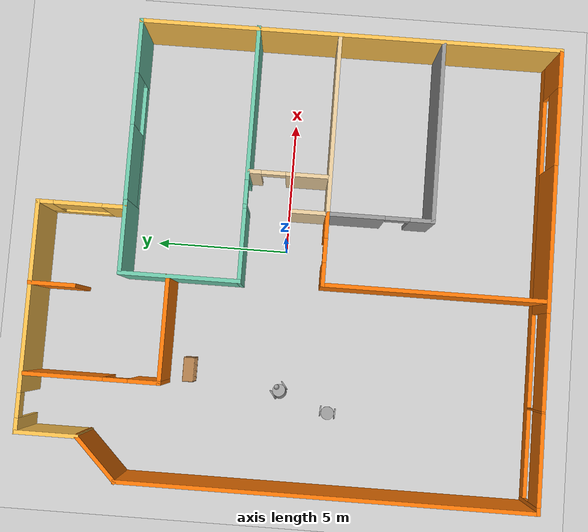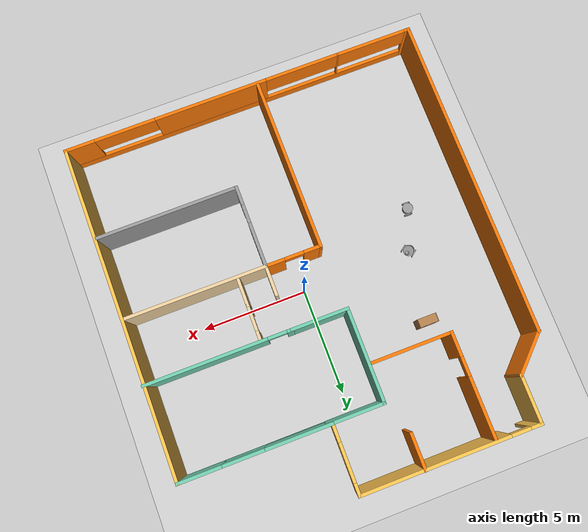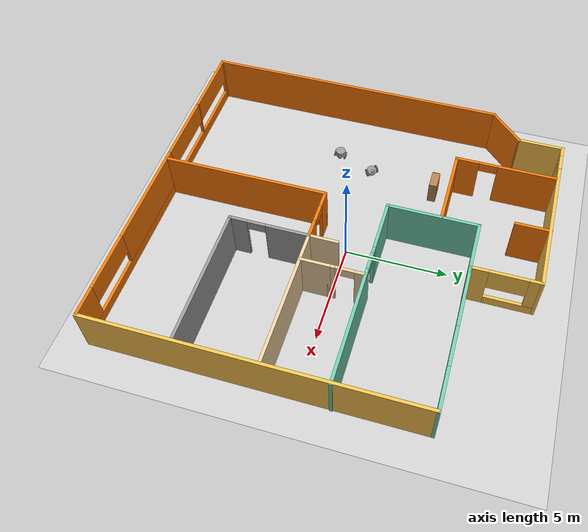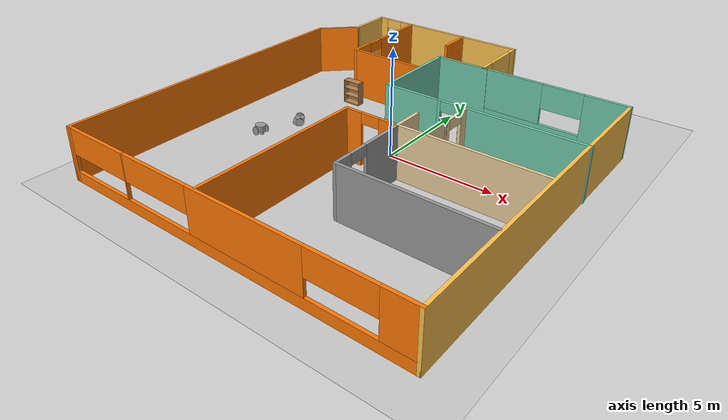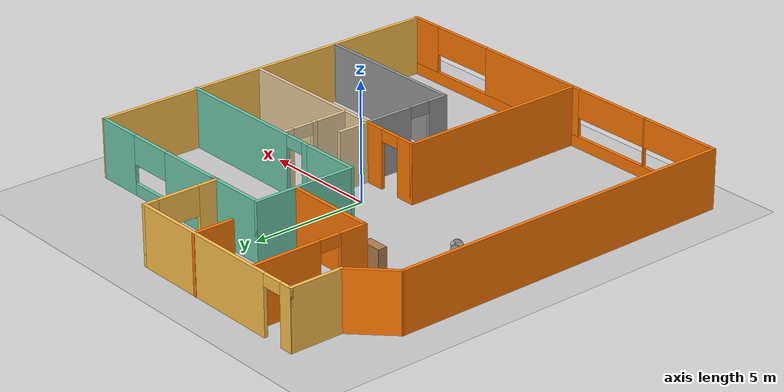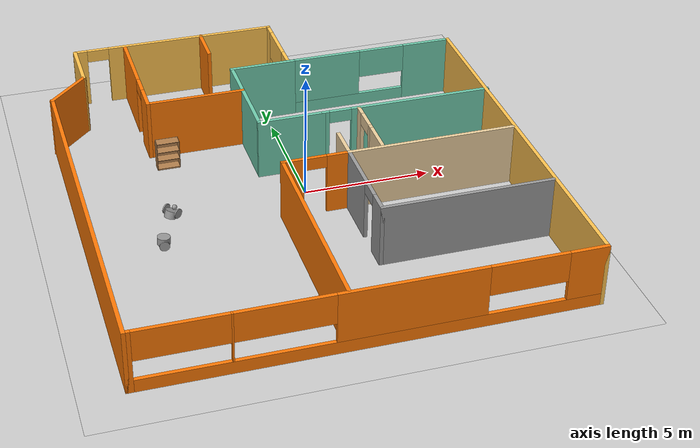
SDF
<sdf version="1.6">
 <world name="default">
  <plugin name="gzplugin" filename="libgzplugin.so"/>
  <light name="sun" type="directional">
   <pose>0 0 10 0 -0 0</pose>
   <diffuse>0.8 0.8 0.8 1</diffuse>
   <specular>0.2 0.2 0.2 1</specular>
   <attenuation>
    <range>1000</range>
    <constant>0.9</constant>
    <linear>0.01</linear>
    <quadratic>0.001</quadratic>
   </attenuation>
   <direction>-0.5 0.1 -0.9</direction>
  </light>
  <model name="ground_plane">
   <static>1</static>
   <link name="link">
    <collision name="collision">
     <geometry><plane><normal>0 0 1</normal><size>100 100</size></plane></geometry>
     <surface><friction><ode><mu>100</mu><mu2>50</mu2></ode></friction></surface>
    </collision>
    <visual name="visual">
     <cast_shadows>0</cast_shadows>
     <geometry><plane><normal>0 0 1</normal><size>100 100</size></plane></geometry>
     <material>
      <script><uri>file://media/materials/scripts/gazebo.material</uri><name>Gazebo/Grey</name></script>
     </material>
    </visual>
   </link>
  </model>
  <gravity>0 0 -9.8</gravity>
  <magnetic_field>6e-06 2.3e-05 -4.2e-05</magnetic_field>
  <atmosphere type="adiabatic"/>
  <physics name="default_physics" default="0" type="ode">
   <max_step_size>0.001</max_step_size>
   <real_time_factor>1</real_time_factor>
   <real_time_update_rate>1000</real_time_update_rate>
  </physics>
  <scene><ambient>0.4 0.4 0.4 1</ambient><background>0.7 0.7 0.7 1</background><shadows>1</shadows></scene>
  <spherical_coordinates>
   <surface_model>EARTH_WGS84</surface_model>
   <latitude_deg>0</latitude_deg>
   <longitude_deg>0</longitude_deg>
   <elevation>0</elevation>
   <heading_deg>0</heading_deg>
  </spherical_coordinates>
  <model name="model">
   <pose>-0.414758 -0.21473 0 0 -0 0</pose>
   <link name="Wall_250">
    <pose>1.40261 7.79151 0 0 -0 1.5708</pose>
    <visual name="Wall_250_Visual_0">
     <pose>-1.21186 0 1.25 0 -0 0</pose>
     <geometry><box><size>0.907436 0.15 2.5</size></box></geometry>
     <material>
      <script><uri>file://media/materials/scripts/gazebo.material</uri><name>Gazebo/Grey</name></script>
      <ambient>1 0.764706 0.305882 1</ambient>
     </material>
     <meta><layer>0</layer></meta>
    </visual>
    <collision name="Wall_250_Collision_0">
     <geometry><box><size>0.907436 0.15 2.5</size></box></geometry>
     <pose>-1.21186 0 1.25 0 -0 0</pose>
    </collision>
    <visual name="Wall_250_Visual_1">
     <pose>0.453718 0 0.25 0 -0 0</pose>
     <geometry><box><size>2.42372 0.15 0.5</size></box></geometry>
     <material>
      <script><uri>file://media/materials/scripts/gazebo.material</uri><name>Gazebo/Grey</name></script>
      <ambient>1 0.764706 0.305882 1</ambient>
     </material>
     <meta><layer>0</layer></meta>
    </visual>
    <collision name="Wall_250_Collision_1">
     <geometry><box><size>2.42372 0.15 0.5</size></box></geometry>
     <pose>0.453718 0 0.25 0 -0 0</pose>
    </collision>
    <visual name="Wall_250_Visual_2">
     <pose>1.34733 0 1.5 0 -0 0</pose>
     <geometry><box><size>0.636504 0.15 2</size></box></geometry>
     <material>
      <script><uri>file://media/materials/scripts/gazebo.material</uri><name>Gazebo/Grey</name></script>
      <ambient>1 0.764706 0.305882 1</ambient>
     </material>
     <meta><layer>0</layer></meta>
    </visual>
    <collision name="Wall_250_Collision_2">
     <geometry><box><size>0.636504 0.15 2</size></box></geometry>
     <pose>1.34733 0 1.5 0 -0 0</pose>
    </collision>
    <visual name="Wall_250_Visual_3">
     <pose>0.135466 0 1.9 0 -0 0</pose>
     <geometry><box><size>1.78722 0.15 1.2</size></box></geometry>
     <material>
      <script><uri>file://media/materials/scripts/gazebo.material</uri><name>Gazebo/Grey</name></script>
      <ambient>1 0.764706 0.305882 1</ambient>
     </material>
     <meta><layer>0</layer></meta>
    </visual>
    <collision name="Wall_250_Collision_3">
     <geometry><box><size>1.78722 0.15 1.2</size></box></geometry>
     <pose>0.135466 0 1.9 0 -0 0</pose>
    </collision>
   </link>
   <link name="Wall_251">
    <pose>-2.77239 9.38209 0 0 -0 3.14159</pose>
    <visual name="Wall_251_Visual_0">
     <pose>-0.736206 0 1.25 0 -0 0</pose>
     <geometry><box><size>7.02759 0.15 2.5</size></box></geometry>
     <material>
      <script><uri>file://media/materials/scripts/gazebo.material</uri><name>Gazebo/Grey</name></script>
      <ambient>1 0.764706 0.305882 1</ambient>
     </material>
     <meta><layer>0</layer></meta>
    </visual>
    <collision name="Wall_251_Collision_0">
     <geometry><box><size>7.02759 0.15 2.5</size></box></geometry>
     <pose>-0.736206 0 1.25 0 -0 0</pose>
    </collision>
    <visual name="Wall_251_Visual_1">
     <pose>3.96379 0 1.25 0 -0 0</pose>
     <geometry><box><size>0.572412 0.15 2.5</size></box></geometry>
     <material>
      <script><uri>file://media/materials/scripts/gazebo.material</uri><name>Gazebo/Grey</name></script>
      <ambient>1 0.764706 0.305882 1</ambient>
     </material>
     <meta><layer>0</layer></meta>
    </visual>
    <collision name="Wall_251_Collision_1">
     <geometry><box><size>0.572412 0.15 2.5</size></box></geometry>
     <pose>3.96379 0 1.25 0 -0 0</pose>
    </collision>
    <visual name="Wall_251_Visual_2">
     <pose>3.22759 0 2.25 0 -0 0</pose>
     <geometry><box><size>0.9 0.15 0.5</size></box></geometry>
     <material>
      <script><uri>file://media/materials/scripts/gazebo.material</uri><name>Gazebo/Grey</name></script>
      <ambient>1 0.764706 0.305882 1</ambient>
     </material>
     <meta><layer>0</layer></meta>
    </visual>
    <collision name="Wall_251_Collision_2">
     <geometry><box><size>0.9 0.15 0.5</size></box></geometry>
     <pose>3.22759 0 2.25 0 -0 0</pose>
    </collision>
   </link>
   <link name="Wall_252">
    <collision name="Wall_252_Collision">
     <geometry><box><size>2.31518 0.15 2.5</size></box></geometry>
     <pose>0 0 1.25 0 -0 0</pose>
    </collision>
    <visual name="Wall_252_Visual">
     <pose>0 0 1.25 0 -0 0</pose>
     <geometry><box><size>2.31518 0.15 2.5</size></box></geometry>
     <material>
      <script><uri>file://media/materials/scripts/gazebo.material</uri><name>Gazebo/Grey</name></script>
      <ambient>1 0.764706 0.305882 1</ambient>
     </material>
     <meta><layer>0</layer></meta>
    </visual>
    <pose>-6.94739 8.2731 0 0 0 -1.5708</pose>
   </link>
   <link name="Wall_253">
    <collision name="Wall_253_Collision">
     <geometry><box><size>2.25 0.15 2.5</size></box></geometry>
     <pose>0 0 1.25 0 -0 0</pose>
    </collision>
    <visual name="Wall_253_Visual">
     <pose>0 0 1.25 0 -0 0</pose>
     <geometry><box><size>2.25 0.15 2.5</size></box></geometry>
     <material>
      <script><uri>file://media/materials/scripts/gazebo.material</uri><name>Gazebo/Grey</name></script>
      <ambient>0.996078 0.47451 0.0196078 1</ambient>
     </material>
     <meta><layer>0</layer></meta>
    </visual>
    <pose>-7.68985 6.44804 0 0 0 -2.35619</pose>
   </link>
   <link name="Wall_254">
    <collision name="Wall_254_Collision">
     <geometry><box><size>15.25 0.15 2.5</size></box></geometry>
     <pose>0 0 1.25 0 -0 0</pose>
    </collision>
    <visual name="Wall_254_Visual">
     <pose>0 0 1.25 0 -0 0</pose>
     <geometry><box><size>15.25 0.15 2.5</size></box></geometry>
     <material>
      <script><uri>file://media/materials/scripts/gazebo.material</uri><name>Gazebo/Grey</name></script>
      <ambient>0.996078 0.47451 0.0196078 1</ambient>
     </material>
     <meta><layer>0</layer></meta>
    </visual>
    <pose>-8.43231 -1.84442 0 0 0 -1.5708</pose>
   </link>
   <link name="Wall_255">
    <pose>-0.007316 -9.39442 0 0 -0 0</pose>
    <visual name="Wall_255_Visual_0">
     <pose>-8.35211 0 1.25 0 -0 0</pose>
     <geometry><box><size>0.295782 0.15 2.5</size></box></geometry>
     <material>
      <script><uri>file://media/materials/scripts/gazebo.material</uri><name>Gazebo/Grey</name></script>
      <ambient>0.996078 0.47451 0.0196078 1</ambient>
     </material>
     <meta><layer>0</layer></meta>
    </visual>
    <collision name="Wall_255_Collision_0">
     <geometry><box><size>0.295782 0.15 2.5</size></box></geometry>
     <pose>-8.35211 0 1.25 0 -0 0</pose>
    </collision>
    <visual name="Wall_255_Visual_1">
     <pose>0.147891 0 0.25 0 -0 0</pose>
     <geometry><box><size>16.7042 0.15 0.5</size></box></geometry>
     <material>
      <script><uri>file://media/materials/scripts/gazebo.material</uri><name>Gazebo/Grey</name></script>
      <ambient>0.996078 0.47451 0.0196078 1</ambient>
     </material>
     <meta><layer>0</layer></meta>
    </visual>
    <collision name="Wall_255_Collision_1">
     <geometry><box><size>16.7042 0.15 0.5</size></box></geometry>
     <pose>0.147891 0 0.25 0 -0 0</pose>
    </collision>
    <visual name="Wall_255_Visual_2">
     <pose>-4.85454 0 1.5 0 -0 0</pose>
     <geometry><box><size>0.068434 0.15 2</size></box></geometry>
     <material>
      <script><uri>file://media/materials/scripts/gazebo.material</uri><name>Gazebo/Grey</name></script>
      <ambient>0.996078 0.47451 0.0196078 1</ambient>
     </material>
     <meta><layer>0</layer></meta>
    </visual>
    <collision name="Wall_255_Collision_2">
     <geometry><box><size>0.068434 0.15 2</size></box></geometry>
     <pose>-4.85454 0 1.5 0 -0 0</pose>
    </collision>
    <visual name="Wall_255_Visual_3">
     <pose>1.41416 0 1.5 0 -0 0</pose>
     <geometry><box><size>5.41879 0.15 2</size></box></geometry>
     <material>
      <script><uri>file://media/materials/scripts/gazebo.material</uri><name>Gazebo/Grey</name></script>
      <ambient>0.996078 0.47451 0.0196078 1</ambient>
     </material>
     <meta><layer>0</layer></meta>
    </visual>
    <collision name="Wall_255_Collision_3">
     <geometry><box><size>5.41879 0.15 2</size></box></geometry>
     <pose>1.41416 0 1.5 0 -0 0</pose>
    </collision>
    <visual name="Wall_255_Visual_4">
     <pose>7.76488 0 1.5 0 -0 0</pose>
     <geometry><box><size>1.47024 0.15 2</size></box></geometry>
     <material>
      <script><uri>file://media/materials/scripts/gazebo.material</uri><name>Gazebo/Grey</name></script>
      <ambient>0.996078 0.47451 0.0196078 1</ambient>
     </material>
     <meta><layer>0</layer></meta>
    </visual>
    <collision name="Wall_255_Collision_4">
     <geometry><box><size>1.47024 0.15 2</size></box></geometry>
     <pose>7.76488 0 1.5 0 -0 0</pose>
    </collision>
    <visual name="Wall_255_Visual_5">
     <pose>-6.54649 0 1.9 0 -0 0</pose>
     <geometry><box><size>3.31547 0.15 1.2</size></box></geometry>
     <material>
      <script><uri>file://media/materials/scripts/gazebo.material</uri><name>Gazebo/Grey</name></script>
      <ambient>0.996078 0.47451 0.0196078 1</ambient>
     </material>
     <meta><layer>0</layer></meta>
    </visual>
    <collision name="Wall_255_Collision_5">
     <geometry><box><size>3.31547 0.15 1.2</size></box></geometry>
     <pose>-6.54649 0 1.9 0 -0 0</pose>
    </collision>
    <visual name="Wall_255_Visual_6">
     <pose>-3.05778 0 1.9 0 -0 0</pose>
     <geometry><box><size>3.52509 0.15 1.2</size></box></geometry>
     <material>
      <script><uri>file://media/materials/scripts/gazebo.material</uri><name>Gazebo/Grey</name></script>
      <ambient>0.996078 0.47451 0.0196078 1</ambient>
     </material>
     <meta><layer>0</layer></meta>
    </visual>
    <collision name="Wall_255_Collision_6">
     <geometry><box><size>3.52509 0.15 1.2</size></box></geometry>
     <pose>-3.05778 0 1.9 0 -0 0</pose>
    </collision>
    <visual name="Wall_255_Visual_7">
     <pose>5.57666 0 1.9 0 -0 0</pose>
     <geometry><box><size>2.9062 0.15 1.2</size></box></geometry>
     <material>
      <script><uri>file://media/materials/scripts/gazebo.material</uri><name>Gazebo/Grey</name></script>
      <ambient>0.996078 0.47451 0.0196078 1</ambient>
     </material>
     <meta><layer>0</layer></meta>
    </visual>
    <collision name="Wall_255_Collision_7">
     <geometry><box><size>2.9062 0.15 1.2</size></box></geometry>
     <pose>5.57666 0 1.9 0 -0 0</pose>
    </collision>
   </link>
   <link name="Wall_256">
    <collision name="Wall_256_Collision">
     <geometry><box><size>15.75 0.15 2.5</size></box></geometry>
     <pose>0 0 1.25 0 -0 0</pose>
    </collision>
    <visual name="Wall_256_Visual">
     <pose>0 0 1.25 0 -0 0</pose>
     <geometry><box><size>15.75 0.15 2.5</size></box></geometry>
     <material>
      <script><uri>file://media/materials/scripts/gazebo.material</uri><name>Gazebo/Grey</name></script>
      <ambient>1 0.764706 0.305882 1</ambient>
     </material>
     <meta><layer>0</layer></meta>
    </visual>
    <pose>8.41768 -1.59442 0 0 -0 1.5708</pose>
   </link>
   <link name="Wall_257">
    <pose>4.91589 6.20685 0 0 -0 3.14123</pose>
    <visual name="Wall_257_Visual_0">
     <pose>-2.54201 0 1.25 0 -0 0</pose>
     <geometry><box><size>2.06957 0.15 2.5</size></box></geometry>
     <material>
      <script><uri>file://media/materials/scripts/gazebo.material</uri><name>Gazebo/Grey</name></script>
      <ambient>0.435294 0.796078 0.67451 1</ambient>
     </material>
     <meta><layer>0</layer></meta>
    </visual>
    <collision name="Wall_257_Collision_0">
     <geometry><box><size>2.06957 0.15 2.5</size></box></geometry>
     <pose>-2.54201 0 1.25 0 -0 0</pose>
    </collision>
    <visual name="Wall_257_Visual_1">
     <pose>1.03478 0 0.25 0 -0 0</pose>
     <geometry><box><size>5.08402 0.15 0.5</size></box></geometry>
     <material>
      <script><uri>file://media/materials/scripts/gazebo.material</uri><name>Gazebo/Grey</name></script>
      <ambient>0.435294 0.796078 0.67451 1</ambient>
     </material>
     <meta><layer>0</layer></meta>
    </visual>
    <collision name="Wall_257_Collision_1">
     <geometry><box><size>5.08402 0.15 0.5</size></box></geometry>
     <pose>1.03478 0 0.25 0 -0 0</pose>
    </collision>
    <visual name="Wall_257_Visual_2">
     <pose>2.00299 0 1.5 0 -0 0</pose>
     <geometry><box><size>3.14761 0.15 2</size></box></geometry>
     <material>
      <script><uri>file://media/materials/scripts/gazebo.material</uri><name>Gazebo/Grey</name></script>
      <ambient>0.435294 0.796078 0.67451 1</ambient>
     </material>
     <meta><layer>0</layer></meta>
    </visual>
    <collision name="Wall_257_Collision_2">
     <geometry><box><size>3.14761 0.15 2</size></box></geometry>
     <pose>2.00299 0 1.5 0 -0 0</pose>
    </collision>
    <visual name="Wall_257_Visual_3">
     <pose>-0.53902 0 1.9 0 -0 0</pose>
     <geometry><box><size>1.93641 0.15 1.2</size></box></geometry>
     <material>
      <script><uri>file://media/materials/scripts/gazebo.material</uri><name>Gazebo/Grey</name></script>
      <ambient>0.435294 0.796078 0.67451 1</ambient>
     </material>
     <meta><layer>0</layer></meta>
    </visual>
    <collision name="Wall_257_Collision_3">
     <geometry><box><size>1.93641 0.15 1.2</size></box></geometry>
     <pose>-0.53902 0 1.9 0 -0 0</pose>
    </collision>
   </link>
   <link name="Wall_259">
    <collision name="Wall_259_Collision">
     <geometry><box><size>1.75 0.15 2.5</size></box></geometry>
     <pose>0 0 1.25 0 -0 0</pose>
    </collision>
    <visual name="Wall_259_Visual">
     <pose>0 0 1.25 0 -0 0</pose>
     <geometry><box><size>1.75 0.15 2.5</size></box></geometry>
     <material>
      <script><uri>file://media/materials/scripts/gazebo.material</uri><name>Gazebo/Grey</name></script>
      <ambient>0.996078 0.47451 0.0196078 1</ambient>
     </material>
     <meta><layer>0</layer></meta>
    </visual>
    <pose>-1.58228 8.59442 0 0 0 -1.5708</pose>
   </link>
   <link name="Wall_261">
    <pose>-4.85388 6.84315 0 0 0 -1.5708</pose>
    <visual name="Wall_261_Visual_0">
     <pose>-1.05218 0 1.25 0 -0 0</pose>
     <geometry><box><size>2.89563 0.15 2.5</size></box></geometry>
     <material>
      <script><uri>file://media/materials/scripts/gazebo.material</uri><name>Gazebo/Grey</name></script>
      <ambient>0.996078 0.47451 0.0196078 1</ambient>
     </material>
     <meta><layer>0</layer></meta>
    </visual>
    <collision name="Wall_261_Collision_0">
     <geometry><box><size>2.89563 0.15 2.5</size></box></geometry>
     <pose>-1.05218 0 1.25 0 -0 0</pose>
    </collision>
    <visual name="Wall_261_Visual_1">
     <pose>1.89782 0 1.25 0 -0 0</pose>
     <geometry><box><size>1.20437 0.15 2.5</size></box></geometry>
     <material>
      <script><uri>file://media/materials/scripts/gazebo.material</uri><name>Gazebo/Grey</name></script>
      <ambient>0.996078 0.47451 0.0196078 1</ambient>
     </material>
     <meta><layer>0</layer></meta>
    </visual>
    <collision name="Wall_261_Collision_1">
     <geometry><box><size>1.20437 0.15 2.5</size></box></geometry>
     <pose>1.89782 0 1.25 0 -0 0</pose>
    </collision>
    <visual name="Wall_261_Visual_2">
     <pose>0.845632 0 2.25 0 -0 0</pose>
     <geometry><box><size>0.9 0.15 0.5</size></box></geometry>
     <material>
      <script><uri>file://media/materials/scripts/gazebo.material</uri><name>Gazebo/Grey</name></script>
      <ambient>0.996078 0.47451 0.0196078 1</ambient>
     </material>
     <meta><layer>0</layer></meta>
    </visual>
    <collision name="Wall_261_Collision_2">
     <geometry><box><size>0.9 0.15 0.5</size></box></geometry>
     <pose>0.845632 0 2.25 0 -0 0</pose>
    </collision>
   </link>
   <link name="Wall_266">
    <collision name="Wall_266_Collision">
     <geometry><box><size>8.25 0.15 2.5</size></box></geometry>
     <pose>0 0 1.25 0 -0 0</pose>
    </collision>
    <visual name="Wall_266_Visual">
     <pose>0 0 1.25 0 -0 0</pose>
     <geometry><box><size>8.25 0.15 2.5</size></box></geometry>
     <material>
      <script><uri>file://media/materials/scripts/gazebo.material</uri><name>Gazebo/Grey</name></script>
      <ambient>0.996078 0.47451 0.0196078 1</ambient>
     </material>
     <meta><layer>0</layer></meta>
    </visual>
    <pose>-0.884083 -5.23961 0 0 -0 1.5708</pose>
   </link>
   <link name="Wall_267">
    <pose>0.415917 -1.18961 0 0 -0 0</pose>
    <visual name="Wall_267_Visual_0">
     <pose>-0.934942 0 1.25 0 -0 0</pose>
     <geometry><box><size>0.880117 0.15 2.5</size></box></geometry>
     <material>
      <script><uri>file://media/materials/scripts/gazebo.material</uri><name>Gazebo/Grey</name></script>
      <ambient>0.996078 0.47451 0.0196078 1</ambient>
     </material>
     <meta><layer>0</layer></meta>
    </visual>
    <collision name="Wall_267_Collision_0">
     <geometry><box><size>0.880117 0.15 2.5</size></box></geometry>
     <pose>-0.934942 0 1.25 0 -0 0</pose>
    </collision>
    <visual name="Wall_267_Visual_1">
     <pose>0.890058 0 1.25 0 -0 0</pose>
     <geometry><box><size>0.969883 0.15 2.5</size></box></geometry>
     <material>
      <script><uri>file://media/materials/scripts/gazebo.material</uri><name>Gazebo/Grey</name></script>
      <ambient>0.996078 0.47451 0.0196078 1</ambient>
     </material>
     <meta><layer>0</layer></meta>
    </visual>
    <collision name="Wall_267_Collision_1">
     <geometry><box><size>0.969883 0.15 2.5</size></box></geometry>
     <pose>0.890058 0 1.25 0 -0 0</pose>
    </collision>
    <visual name="Wall_267_Visual_2">
     <pose>-0.044883 0 2.25 0 -0 0</pose>
     <geometry><box><size>0.9 0.15 0.5</size></box></geometry>
     <material>
      <script><uri>file://media/materials/scripts/gazebo.material</uri><name>Gazebo/Grey</name></script>
      <ambient>0.996078 0.47451 0.0196078 1</ambient>
     </material>
     <meta><layer>0</layer></meta>
    </visual>
    <collision name="Wall_267_Collision_2">
     <geometry><box><size>0.9 0.15 0.5</size></box></geometry>
     <pose>-0.044883 0 2.25 0 -0 0</pose>
    </collision>
   </link>
   <link name="Wall_268">
    <collision name="Wall_268_Collision">
     <geometry><box><size>1.5 0.15 2.5</size></box></geometry>
     <pose>0 0 1.25 0 -0 0</pose>
    </collision>
    <visual name="Wall_268_Visual">
     <pose>0 0 1.25 0 -0 0</pose>
     <geometry><box><size>1.5 0.15 2.5</size></box></geometry>
     <material>
      <script><uri>file://media/materials/scripts/gazebo.material</uri><name>Gazebo/Grey</name></script>
      <ambient>0.921569 0.807843 0.615686 1</ambient>
     </material>
     <meta><layer>0</layer></meta>
    </visual>
    <pose>1.71592 -0.514608 0 0 -0 1.5708</pose>
   </link>
   <link name="Wall_272">
    <pose>1.71592 -3.11461 0 0 0 -1.5708</pose>
    <visual name="Wall_272_Visual_0">
     <pose>-0.913683 0 1.25 0 -0 0</pose>
     <geometry><box><size>2.17263 0.15 2.5</size></box></geometry>
     <material>
      <script><uri>file://media/materials/scripts/gazebo.material</uri><name>Gazebo/Grey</name></script>
      <ambient>1 1 1 1</ambient>
     </material>
     <meta><layer>0</layer></meta>
    </visual>
    <collision name="Wall_272_Collision_0">
     <geometry><box><size>2.17263 0.15 2.5</size></box></geometry>
     <pose>-0.913683 0 1.25 0 -0 0</pose>
    </collision>
    <visual name="Wall_272_Visual_1">
     <pose>1.53632 0 1.25 0 -0 0</pose>
     <geometry><box><size>0.927367 0.15 2.5</size></box></geometry>
     <material>
      <script><uri>file://media/materials/scripts/gazebo.material</uri><name>Gazebo/Grey</name></script>
      <ambient>1 1 1 1</ambient>
     </material>
     <meta><layer>0</layer></meta>
    </visual>
    <collision name="Wall_272_Collision_1">
     <geometry><box><size>0.927367 0.15 2.5</size></box></geometry>
     <pose>1.53632 0 1.25 0 -0 0</pose>
    </collision>
    <visual name="Wall_272_Visual_2">
     <pose>0.622633 0 2.25 0 -0 0</pose>
     <geometry><box><size>0.9 0.15 0.5</size></box></geometry>
     <material>
      <script><uri>file://media/materials/scripts/gazebo.material</uri><name>Gazebo/Grey</name></script>
      <ambient>1 1 1 1</ambient>
     </material>
     <meta><layer>0</layer></meta>
    </visual>
    <collision name="Wall_272_Collision_2">
     <geometry><box><size>0.9 0.15 0.5</size></box></geometry>
     <pose>0.622633 0 2.25 0 -0 0</pose>
    </collision>
   </link>
   <link name="Wall_273">
    <collision name="Wall_273_Collision">
     <geometry><box><size>6.75 0.15 2.5</size></box></geometry>
     <pose>0 0 1.25 0 -0 0</pose>
    </collision>
    <visual name="Wall_273_Visual">
     <pose>0 0 1.25 0 -0 0</pose>
     <geometry><box><size>6.75 0.15 2.5</size></box></geometry>
     <material>
      <script><uri>file://media/materials/scripts/gazebo.material</uri><name>Gazebo/Grey</name></script>
      <ambient>1 1 1 1</ambient>
     </material>
     <meta><layer>0</layer></meta>
    </visual>
    <pose>5.01592 -5.03961 0 0 -0 0</pose>
   </link>
   <link name="Wall_275">
    <collision name="Wall_275_Collision">
     <geometry><box><size>6.75 0.15 2.5</size></box></geometry>
     <pose>0 0 1.25 0 -0 0</pose>
    </collision>
    <visual name="Wall_275_Visual">
     <pose>0 0 1.25 0 -0 0</pose>
     <geometry><box><size>6.75 0.15 2.5</size></box></geometry>
     <material>
      <script><uri>file://media/materials/scripts/gazebo.material</uri><name>Gazebo/Grey</name></script>
      <ambient>0.921569 0.807843 0.615686 1</ambient>
     </material>
     <meta><layer>0</layer></meta>
    </visual>
    <pose>5.01592 -1.18961 0 0 -0 0</pose>
   </link>
   <link name="Wall_280">
    <collision name="Wall_280_Collision">
     <geometry><box><size>1.5 0.15 2.5</size></box></geometry>
     <pose>0 0 1.25 0 -0 0</pose>
    </collision>
    <visual name="Wall_280_Visual">
     <pose>0 0 1.25 0 -0 0</pose>
     <geometry><box><size>1.5 0.15 2.5</size></box></geometry>
     <material>
      <script><uri>file://media/materials/scripts/gazebo.material</uri><name>Gazebo/Grey</name></script>
      <ambient>0.921569 0.807843 0.615686 1</ambient>
     </material>
     <meta><layer>0</layer></meta>
    </visual>
    <pose>3.06592 -0.514608 0 0 0 -1.5708</pose>
   </link>
   <link name="Wall_282">
    <pose>3.06592 0.960392 0 0 -0 1.5708</pose>
    <visual name="Wall_282_Visual_0">
     <pose>-0.692344 0 1.25 0 -0 0</pose>
     <geometry><box><size>0.365312 0.15 2.5</size></box></geometry>
     <material>
      <script><uri>file://media/materials/scripts/gazebo.material</uri><name>Gazebo/Grey</name></script>
      <ambient>0.921569 0.807843 0.615686 1</ambient>
     </material>
     <meta><layer>0</layer></meta>
    </visual>
    <collision name="Wall_282_Collision_0">
     <geometry><box><size>0.365312 0.15 2.5</size></box></geometry>
     <pose>-0.692344 0 1.25 0 -0 0</pose>
    </collision>
    <visual name="Wall_282_Visual_1">
     <pose>0.632656 0 1.25 0 -0 0</pose>
     <geometry><box><size>0.484688 0.15 2.5</size></box></geometry>
     <material>
      <script><uri>file://media/materials/scripts/gazebo.material</uri><name>Gazebo/Grey</name></script>
      <ambient>0.921569 0.807843 0.615686 1</ambient>
     </material>
     <meta><layer>0</layer></meta>
    </visual>
    <collision name="Wall_282_Collision_1">
     <geometry><box><size>0.484688 0.15 2.5</size></box></geometry>
     <pose>0.632656 0 1.25 0 -0 0</pose>
    </collision>
    <visual name="Wall_282_Visual_2">
     <pose>-0.059688 0 2.25 0 -0 0</pose>
     <geometry><box><size>0.9 0.15 0.5</size></box></geometry>
     <material>
      <script><uri>file://media/materials/scripts/gazebo.material</uri><name>Gazebo/Grey</name></script>
      <ambient>0.921569 0.807843 0.615686 1</ambient>
     </material>
     <meta><layer>0</layer></meta>
    </visual>
    <collision name="Wall_282_Collision_2">
     <geometry><box><size>0.9 0.15 0.5</size></box></geometry>
     <pose>-0.059688 0 2.25 0 -0 0</pose>
    </collision>
   </link>
   <link name="Wall_285">
    <collision name="Wall_285_Collision">
     <geometry><box><size>2.75 0.15 2.5</size></box></geometry>
     <pose>0 0 1.25 0 -0 0</pose>
    </collision>
    <visual name="Wall_285_Visual">
     <pose>0 0 1.25 0 -0 0</pose>
     <geometry><box><size>2.75 0.15 2.5</size></box></geometry>
     <material>
      <script><uri>file://media/materials/scripts/gazebo.material</uri><name>Gazebo/Grey</name></script>
      <ambient>0.435294 0.796078 0.67451 1</ambient>
     </material>
     <meta><layer>0</layer></meta>
    </visual>
    <pose>0.313383 1.84373 0 0 -0 3.14159</pose>
   </link>
   <link name="Wall_286">
    <collision name="Wall_286_Collision">
     <geometry><box><size>4.5 0.15 2.5</size></box></geometry>
     <pose>0 0 1.25 0 -0 0</pose>
    </collision>
    <visual name="Wall_286_Visual">
     <pose>0 0 1.25 0 -0 0</pose>
     <geometry><box><size>4.5 0.15 2.5</size></box></geometry>
     <material>
      <script><uri>file://media/materials/scripts/gazebo.material</uri><name>Gazebo/Grey</name></script>
      <ambient>0.435294 0.796078 0.67451 1</ambient>
     </material>
     <meta><layer>0</layer></meta>
    </visual>
    <pose>-0.986617 4.01874 0 0 -0 1.5708</pose>
   </link>
   <link name="Wall_287">
    <collision name="Wall_287_Collision">
     <geometry><box><size>2.75 0.15 2.5</size></box></geometry>
     <pose>0 0 1.25 0 -0 0</pose>
    </collision>
    <visual name="Wall_287_Visual">
     <pose>0 0 1.25 0 -0 0</pose>
     <geometry><box><size>2.75 0.15 2.5</size></box></geometry>
     <material>
      <script><uri>file://media/materials/scripts/gazebo.material</uri><name>Gazebo/Grey</name></script>
      <ambient>0.435294 0.796078 0.67451 1</ambient>
     </material>
     <meta><layer>0</layer></meta>
    </visual>
    <pose>0.313383 6.19374 0 0 -0 0</pose>
   </link>
   <link name="Wall_289">
    <collision name="Wall_289_Collision">
     <geometry><box><size>4 0.15 2.5</size></box></geometry>
     <pose>0 0 1.25 0 -0 0</pose>
    </collision>
    <visual name="Wall_289_Visual">
     <pose>0 0 1.25 0 -0 0</pose>
     <geometry><box><size>4 0.15 2.5</size></box></geometry>
     <material>
      <script><uri>file://media/materials/scripts/gazebo.material</uri><name>Gazebo/Grey</name></script>
      <ambient>0.996078 0.47451 0.0196078 1</ambient>
     </material>
     <meta><layer>0</layer></meta>
    </visual>
    <pose>-2.92888 4.41815 0 0 -0 0</pose>
   </link>
   <link name="Wall_291">
    <pose>5.03838 1.84373 0 0 -0 0</pose>
    <visual name="Wall_291_Visual_0">
     <pose>-3.34441 0 1.25 0 -0 0</pose>
     <geometry><box><size>0.311174 0.15 2.5</size></box></geometry>
     <material>
      <script><uri>file://media/materials/scripts/gazebo.material</uri><name>Gazebo/Grey</name></script>
      <ambient>0.435294 0.796078 0.67451 1</ambient>
     </material>
     <meta><layer>0</layer></meta>
    </visual>
    <collision name="Wall_291_Collision_0">
     <geometry><box><size>0.311174 0.15 2.5</size></box></geometry>
     <pose>-3.34441 0 1.25 0 -0 0</pose>
    </collision>
    <visual name="Wall_291_Visual_1">
     <pose>0.605587 0 1.25 0 -0 0</pose>
     <geometry><box><size>5.78883 0.15 2.5</size></box></geometry>
     <material>
      <script><uri>file://media/materials/scripts/gazebo.material</uri><name>Gazebo/Grey</name></script>
      <ambient>0.435294 0.796078 0.67451 1</ambient>
     </material>
     <meta><layer>0</layer></meta>
    </visual>
    <collision name="Wall_291_Collision_1">
     <geometry><box><size>5.78883 0.15 2.5</size></box></geometry>
     <pose>0.605587 0 1.25 0 -0 0</pose>
    </collision>
    <visual name="Wall_291_Visual_2">
     <pose>-2.73883 0 2.25 0 -0 0</pose>
     <geometry><box><size>0.9 0.15 0.5</size></box></geometry>
     <material>
      <script><uri>file://media/materials/scripts/gazebo.material</uri><name>Gazebo/Grey</name></script>
      <ambient>0.435294 0.796078 0.67451 1</ambient>
     </material>
     <meta><layer>0</layer></meta>
    </visual>
    <collision name="Wall_291_Collision_2">
     <geometry><box><size>0.9 0.15 0.5</size></box></geometry>
     <pose>-2.73883 0 2.25 0 -0 0</pose>
    </collision>
   </link>
   <static>1</static>
  </model>
  <model name="bookshelf">
   <static>1</static>
   <link name="link">
    <inertial><mass>1</mass></inertial>
    <collision name="back">
     <pose>0 0.005 0.6 0 -0 0</pose>
     <geometry><box><size>0.9 0.01 1.2</size></box></geometry>
    </collision>
    <visual name="visual1">
     <pose>0 0.005 0.6 0 -0 0</pose>
     <geometry><box><size>0.9 0.01 1.2</size></box></geometry>
     <material>
      <script><uri>file://media/materials/scripts/gazebo.material</uri><name>Gazebo/Wood</name></script>
     </material>
    </visual>
    <collision name="left_side">
     <pose>0.45 -0.195 0.6 0 -0 0</pose>
     <geometry><box><size>0.02 0.4 1.2</size></box></geometry>
    </collision>
    <visual name="visual2">
     <pose>0.45 -0.195 0.6 0 -0 0</pose>
     <geometry><box><size>0.02 0.4 1.2</size></box></geometry>
     <material>
      <script><uri>file://media/materials/scripts/gazebo.material</uri><name>Gazebo/Wood</name></script>
     </material>
    </visual>
    <collision name="right_side">
     <pose>-0.45 -0.195 0.6 0 -0 0</pose>
     <geometry><box><size>0.02 0.4 1.2</size></box></geometry>
    </collision>
    <visual name="visual3">
     <pose>-0.45 -0.195 0.6 0 -0 0</pose>
     <geometry><box><size>0.02 0.4 1.2</size></box></geometry>
     <material>
      <script><uri>file://media/materials/scripts/gazebo.material</uri><name>Gazebo/Wood</name></script>
     </material>
    </visual>
    <collision name="bottom">
     <pose>0 -0.195 0.03 0 -0 0</pose>
     <geometry><box><size>0.88 0.4 0.06</size></box></geometry>
    </collision>
    <visual name="visual4">
     <pose>0 -0.195 0.03 0 -0 0</pose>
     <geometry><box><size>0.88 0.4 0.06</size></box></geometry>
     <material>
      <script><uri>file://media/materials/scripts/gazebo.material</uri><name>Gazebo/Wood</name></script>
     </material>
    </visual>
    <collision name="top">
     <pose>0 -0.195 1.19 0 -0 0</pose>
     <geometry><box><size>0.88 0.4 0.02</size></box></geometry>
    </collision>
    <visual name="visual5">
     <pose>0 -0.195 1.19 0 -0 0</pose>
     <geometry><box><size>0.88 0.4 0.02</size></box></geometry>
     <material>
      <script><uri>file://media/materials/scripts/gazebo.material</uri><name>Gazebo/Wood</name></script>
     </material>
    </visual>
    <collision name="low_shelf">
     <pose>0 -0.195 0.43 0 -0 0</pose>
     <geometry><box><size>0.88 0.4 0.02</size></box></geometry>
    </collision>
    <visual name="visual6">
     <pose>0 -0.195 0.43 0 -0 0</pose>
     <geometry><box><size>0.88 0.4 0.02</size></box></geometry>
     <material>
      <script><uri>file://media/materials/scripts/gazebo.material</uri><name>Gazebo/Wood</name></script>
     </material>
    </visual>
    <collision name="high_shelf">
     <pose>0 -0.195 0.8 0 -0 0</pose>
     <geometry><box><size>0.88 0.4 0.02</size></box></geometry>
    </collision>
    <visual name="visual7">
     <pose>0 -0.195 0.8 0 -0 0</pose>
     <geometry><box><size>0.88 0.4 0.02</size></box></geometry>
     <material>
      <script><uri>file://media/materials/scripts/gazebo.material</uri><name>Gazebo/Wood</name></script>
     </material>
    </visual>
   </link>
   <pose>-4.74509 3.51624 0 0 -0 0</pose>
  </model>
  <model name="pancakebot">
   <link name="link_0">
    <pose>-0.0425 -0.275019 0.012515 1.5707 -0 0</pose>
    <inertial>
     <mass>1</mass>
     <inertia><ixx>0.145833</ixx><ixy>0</ixy><ixz>0</ixz><iyy>0.145833</iyy><iyz>0</iyz><izz>0.125</izz></inertia>
    </inertial>
    <visual name="visual">
     <geometry><cylinder><radius>0.2</radius><length>0.05</length></cylinder></geometry>
     <material>
      <lighting>1</lighting>
      <script><uri>file://media/materials/scripts/gazebo.material</uri><name>Gazebo/Grey</name></script>
      <ambient>0.3 0.3 0.3 1</ambient>
      <diffuse>0.7 0.7 0.7 1</diffuse>
      <specular>0.01 0.01 0.01 1</specular>
      <emissive>0 0 0 1</emissive>
      <shader type="vertex"><normal_map>__default__</normal_map></shader>
     </material>
    </visual>
    <collision name="collision">
     <geometry><cylinder><radius>0.2</radius><length>0.05</length></cylinder></geometry>
     <surface>
      <friction>
       <ode><mu>1</mu><mu2>1</mu2><fdir1>0 0 0</fdir1><slip1>0</slip1><slip2>0</slip2></ode>
       <torsional>
        <coefficient>1</coefficient>
        <patch_radius>0</patch_radius>
        <surface_radius>0</surface_radius>
        <use_patch_radius>1</use_patch_radius>
        <ode><slip>0</slip></ode>
       </torsional>
      </friction>
      <bounce><restitution_coefficient>0</restitution_coefficient><threshold>1e+06</threshold></bounce>
      <contact>
       <collide_without_contact>0</collide_without_contact>
       <collide_without_contact_bitmask>1</collide_without_contact_bitmask>
       <collide_bitmask>1</collide_bitmask>
       <ode>
        <soft_cfm>0</soft_cfm>
        <soft_erp>0.2</soft_erp>
        <kp>1e+13</kp>
        <kd>1</kd>
        <max_vel>0.01</max_vel>
        <min_depth>0</min_depth>
       </ode>
       <bullet>
        <split_impulse>1</split_impulse>
        <split_impulse_penetration_threshold>-0.01</split_impulse_penetration_threshold>
        <soft_cfm>0</soft_cfm>
        <soft_erp>0.2</soft_erp>
        <kp>1e+13</kp>
        <kd>1</kd>
       </bullet>
      </contact>
     </surface>
    </collision>
   </link>
   <link name="link_0_clone">
    <pose>0.0075 0.275019 0.012483 1.5707 -0 0</pose>
    <inertial>
     <mass>1</mass>
     <inertia><ixx>0.145833</ixx><ixy>0</ixy><ixz>0</ixz><iyy>0.145833</iyy><iyz>0</iyz><izz>0.125</izz></inertia>
    </inertial>
    <visual name="visual">
     <geometry><cylinder><radius>0.2</radius><length>0.05</length></cylinder></geometry>
     <material>
      <lighting>1</lighting>
      <script><uri>file://media/materials/scripts/gazebo.material</uri><name>Gazebo/Grey</name></script>
      <ambient>0.3 0.3 0.3 1</ambient>
      <diffuse>0.7 0.7 0.7 1</diffuse>
      <specular>0.01 0.01 0.01 1</specular>
      <emissive>0 0 0 1</emissive>
      <shader type="vertex"><normal_map>__default__</normal_map></shader>
     </material>
    </visual>
    <collision name="collision">
     <geometry><cylinder><radius>0.2</radius><length>0.05</length></cylinder></geometry>
     <surface>
      <friction>
       <ode><mu>1</mu><mu2>1</mu2><fdir1>0 0 0</fdir1><slip1>0</slip1><slip2>0</slip2></ode>
       <torsional>
        <coefficient>1</coefficient>
        <patch_radius>0</patch_radius>
        <surface_radius>0</surface_radius>
        <use_patch_radius>1</use_patch_radius>
        <ode><slip>0</slip></ode>
       </torsional>
      </friction>
      <bounce><restitution_coefficient>0</restitution_coefficient><threshold>1e+06</threshold></bounce>
      <contact>
       <collide_without_contact>0</collide_without_contact>
       <collide_without_contact_bitmask>1</collide_without_contact_bitmask>
       <collide_bitmask>1</collide_bitmask>
       <ode>
        <soft_cfm>0</soft_cfm>
        <soft_erp>0.2</soft_erp>
        <kp>1e+13</kp>
        <kd>1</kd>
        <max_vel>0.01</max_vel>
        <min_depth>0</min_depth>
       </ode>
       <bullet>
        <split_impulse>1</split_impulse>
        <split_impulse_penetration_threshold>-0.01</split_impulse_penetration_threshold>
        <soft_cfm>0</soft_cfm>
        <soft_erp>0.2</soft_erp>
        <kp>1e+13</kp>
        <kd>1</kd>
       </bullet>
      </contact>
     </surface>
    </collision>
   </link>
   <link name="link_2">
    <pose>-0.0425 0 0.112501 0 -0 0</pose>
    <inertial>
     <mass>1</mass>
     <inertia><ixx>0.145833</ixx><ixy>0</ixy><ixz>0</ixz><iyy>0.145833</iyy><iyz>0</iyz><izz>0.125</izz></inertia>
    </inertial>
    <visual name="visual">
     <geometry><cylinder><radius>0.25</radius><length>0.3</length></cylinder></geometry>
     <material>
      <lighting>1</lighting>
      <script><uri>file://media/materials/scripts/gazebo.material</uri><name>Gazebo/Grey</name></script>
      <ambient>0.3 0.3 0.3 1</ambient>
      <diffuse>0.7 0.7 0.7 1</diffuse>
      <specular>0.01 0.01 0.01 1</specular>
      <emissive>0 0 0 1</emissive>
      <shader type="vertex"><normal_map>__default__</normal_map></shader>
     </material>
    </visual>
    <collision name="collision">
     <geometry><cylinder><radius>0.25</radius><length>0.3</length></cylinder></geometry>
     <surface>
      <friction>
       <ode><mu>1</mu><mu2>1</mu2><fdir1>0 0 0</fdir1><slip1>0</slip1><slip2>0</slip2></ode>
       <torsional>
        <coefficient>1</coefficient>
        <patch_radius>0</patch_radius>
        <surface_radius>0</surface_radius>
        <use_patch_radius>1</use_patch_radius>
        <ode><slip>0</slip></ode>
       </torsional>
      </friction>
      <bounce><restitution_coefficient>0</restitution_coefficient><threshold>1e+06</threshold></bounce>
      <contact>
       <collide_without_contact>0</collide_without_contact>
       <collide_without_contact_bitmask>1</collide_without_contact_bitmask>
       <collide_bitmask>1</collide_bitmask>
       <ode>
        <soft_cfm>0</soft_cfm>
        <soft_erp>0.2</soft_erp>
        <kp>1e+13</kp>
        <kd>1</kd>
        <max_vel>0.01</max_vel>
        <min_depth>0</min_depth>
       </ode>
       <bullet>
        <split_impulse>1</split_impulse>
        <split_impulse_penetration_threshold>-0.01</split_impulse_penetration_threshold>
        <soft_cfm>0</soft_cfm>
        <soft_erp>0.2</soft_erp>
        <kp>1e+13</kp>
        <kd>1</kd>
       </bullet>
      </contact>
     </surface>
    </collision>
   </link>
   <link name="link_3">
    <pose>0.0775 0 -0.137499 0 -0 0</pose>
    <inertial>
     <mass>1</mass>
     <inertia><ixx>0.1</ixx><ixy>0</ixy><ixz>0</ixz><iyy>0.1</iyy><iyz>0</iyz><izz>0.1</izz></inertia>
    </inertial>
    <visual name="visual">
     <geometry><sphere><radius>0.1</radius></sphere></geometry>
     <material>
      <lighting>1</lighting>
      <script><uri>file://media/materials/scripts/gazebo.material</uri><name>Gazebo/Grey</name></script>
      <ambient>0.3 0.3 0.3 1</ambient>
      <diffuse>0.7 0.7 0.7 1</diffuse>
      <specular>0.01 0.01 0.01 1</specular>
      <emissive>0 0 0 1</emissive>
      <shader type="vertex"><normal_map>__default__</normal_map></shader>
     </material>
    </visual>
    <collision name="collision">
     <geometry><sphere><radius>0.1</radius></sphere></geometry>
     <surface>
      <friction>
       <ode><mu>1</mu><mu2>1</mu2><fdir1>0 0 0</fdir1><slip1>0</slip1><slip2>0</slip2></ode>
       <torsional>
        <coefficient>1</coefficient>
        <patch_radius>0</patch_radius>
        <surface_radius>0</surface_radius>
        <use_patch_radius>1</use_patch_radius>
        <ode><slip>0</slip></ode>
       </torsional>
      </friction>
      <bounce><restitution_coefficient>0</restitution_coefficient><threshold>1e+06</threshold></bounce>
      <contact>
       <collide_without_contact>0</collide_without_contact>
       <collide_without_contact_bitmask>1</collide_without_contact_bitmask>
       <collide_bitmask>1</collide_bitmask>
       <ode>
        <soft_cfm>0</soft_cfm>
        <soft_erp>0.2</soft_erp>
        <kp>1e+13</kp>
        <kd>1</kd>
        <max_vel>0.01</max_vel>
        <min_depth>0</min_depth>
       </ode>
       <bullet>
        <split_impulse>1</split_impulse>
        <split_impulse_penetration_threshold>-0.01</split_impulse_penetration_threshold>
        <soft_cfm>0</soft_cfm>
        <soft_erp>0.2</soft_erp>
        <kp>1e+13</kp>
        <kd>1</kd>
       </bullet>
      </contact>
     </surface>
    </collision>
   </link>
   <joint name="link_2_JOINT_0" type="revolute">
    <parent>link_2</parent>
    <child>link_0</child>
    <axis>
     <xyz>0 0 1</xyz>
     <use_parent_model_frame>0</use_parent_model_frame>
     <limit>
      <lower>-1.79769e+308</lower>
      <upper>1.79769e+308</upper>
      <effort>-1</effort>
      <velocity>-1</velocity>
     </limit>
     <dynamics>
      <spring_reference>0</spring_reference>
      <spring_stiffness>0</spring_stiffness>
      <damping>0</damping>
      <friction>0</friction>
     </dynamics>
    </axis>
    <physics>
     <ode><limit><cfm>0</cfm><erp>0.2</erp></limit><suspension><cfm>0</cfm><erp>0.2</erp></suspension></ode>
    </physics>
   </joint>
   <joint name="link_2_JOINT_1" type="revolute">
    <parent>link_2</parent>
    <child>link_0_clone</child>
    <axis>
     <xyz>0 0 1</xyz>
     <use_parent_model_frame>0</use_parent_model_frame>
     <limit>
      <lower>-1.79769e+308</lower>
      <upper>1.79769e+308</upper>
      <effort>-1</effort>
      <velocity>-1</velocity>
     </limit>
     <dynamics>
      <spring_reference>0</spring_reference>
      <spring_stiffness>0</spring_stiffness>
      <damping>0</damping>
      <friction>0</friction>
     </dynamics>
    </axis>
    <physics>
     <ode><limit><cfm>0</cfm><erp>0.2</erp></limit><suspension><cfm>0</cfm><erp>0.2</erp></suspension></ode>
    </physics>
   </joint>
   <joint name="link_2_JOINT_2" type="ball">
    <parent>link_2</parent>
    <child>link_3</child>
    <physics>
     <ode><limit><cfm>0</cfm><erp>0.2</erp></limit><suspension><cfm>0</cfm><erp>0.2</erp></suspension></ode>
    </physics>
   </joint>
   <static>0</static>
   <pose>-5.29592 -0.066576 0.187494 -3.10338 0.364186 0.667737</pose>
  </model>
  <model name="pancakebot_0">
   <link name="link_0">
    <pose>-0.0425 -0.275019 0.012515 1.5707 -0 0</pose>
    <inertial>
     <mass>1</mass>
     <inertia><ixx>0.145833</ixx><ixy>0</ixy><ixz>0</ixz><iyy>0.145833</iyy><iyz>0</iyz><izz>0.125</izz></inertia>
    </inertial>
    <visual name="visual">
     <geometry><cylinder><radius>0.2</radius><length>0.05</length></cylinder></geometry>
     <material>
      <lighting>1</lighting>
      <script><uri>file://media/materials/scripts/gazebo.material</uri><name>Gazebo/Grey</name></script>
      <ambient>0.3 0.3 0.3 1</ambient>
      <diffuse>0.7 0.7 0.7 1</diffuse>
      <specular>0.01 0.01 0.01 1</specular>
      <emissive>0 0 0 1</emissive>
      <shader type="vertex"><normal_map>__default__</normal_map></shader>
     </material>
    </visual>
    <collision name="collision">
     <geometry><cylinder><radius>0.2</radius><length>0.05</length></cylinder></geometry>
     <surface>
      <friction>
       <ode><mu>1</mu><mu2>1</mu2><fdir1>0 0 0</fdir1><slip1>0</slip1><slip2>0</slip2></ode>
       <torsional>
        <coefficient>1</coefficient>
        <patch_radius>0</patch_radius>
        <surface_radius>0</surface_radius>
        <use_patch_radius>1</use_patch_radius>
        <ode><slip>0</slip></ode>
       </torsional>
      </friction>
      <bounce><restitution_coefficient>0</restitution_coefficient><threshold>1e+06</threshold></bounce>
      <contact>
       <collide_without_contact>0</collide_without_contact>
       <collide_without_contact_bitmask>1</collide_without_contact_bitmask>
       <collide_bitmask>1</collide_bitmask>
       <ode>
        <soft_cfm>0</soft_cfm>
        <soft_erp>0.2</soft_erp>
        <kp>1e+13</kp>
        <kd>1</kd>
        <max_vel>0.01</max_vel>
        <min_depth>0</min_depth>
       </ode>
       <bullet>
        <split_impulse>1</split_impulse>
        <split_impulse_penetration_threshold>-0.01</split_impulse_penetration_threshold>
        <soft_cfm>0</soft_cfm>
        <soft_erp>0.2</soft_erp>
        <kp>1e+13</kp>
        <kd>1</kd>
       </bullet>
      </contact>
     </surface>
    </collision>
   </link>
   <link name="link_0_clone">
    <pose>0.0075 0.275019 0.012483 1.5707 -0 0</pose>
    <inertial>
     <mass>1</mass>
     <inertia><ixx>0.145833</ixx><ixy>0</ixy><ixz>0</ixz><iyy>0.145833</iyy><iyz>0</iyz><izz>0.125</izz></inertia>
    </inertial>
    <visual name="visual">
     <geometry><cylinder><radius>0.2</radius><length>0.05</length></cylinder></geometry>
     <material>
      <lighting>1</lighting>
      <script><uri>file://media/materials/scripts/gazebo.material</uri><name>Gazebo/Grey</name></script>
      <ambient>0.3 0.3 0.3 1</ambient>
      <diffuse>0.7 0.7 0.7 1</diffuse>
      <specular>0.01 0.01 0.01 1</specular>
      <emissive>0 0 0 1</emissive>
      <shader type="vertex"><normal_map>__default__</normal_map></shader>
     </material>
    </visual>
    <collision name="collision">
     <geometry><cylinder><radius>0.2</radius><length>0.05</length></cylinder></geometry>
     <surface>
      <friction>
       <ode><mu>1</mu><mu2>1</mu2><fdir1>0 0 0</fdir1><slip1>0</slip1><slip2>0</slip2></ode>
       <torsional>
        <coefficient>1</coefficient>
        <patch_radius>0</patch_radius>
        <surface_radius>0</surface_radius>
        <use_patch_radius>1</use_patch_radius>
        <ode><slip>0</slip></ode>
       </torsional>
      </friction>
      <bounce><restitution_coefficient>0</restitution_coefficient><threshold>1e+06</threshold></bounce>
      <contact>
       <collide_without_contact>0</collide_without_contact>
       <collide_without_contact_bitmask>1</collide_without_contact_bitmask>
       <collide_bitmask>1</collide_bitmask>
       <ode>
        <soft_cfm>0</soft_cfm>
        <soft_erp>0.2</soft_erp>
        <kp>1e+13</kp>
        <kd>1</kd>
        <max_vel>0.01</max_vel>
        <min_depth>0</min_depth>
       </ode>
       <bullet>
        <split_impulse>1</split_impulse>
        <split_impulse_penetration_threshold>-0.01</split_impulse_penetration_threshold>
        <soft_cfm>0</soft_cfm>
        <soft_erp>0.2</soft_erp>
        <kp>1e+13</kp>
        <kd>1</kd>
       </bullet>
      </contact>
     </surface>
    </collision>
   </link>
   <link name="link_2">
    <pose>-0.0425 0 0.112501 0 -0 0</pose>
    <inertial>
     <mass>1</mass>
     <inertia><ixx>0.145833</ixx><ixy>0</ixy><ixz>0</ixz><iyy>0.145833</iyy><iyz>0</iyz><izz>0.125</izz></inertia>
    </inertial>
    <visual name="visual">
     <geometry><cylinder><radius>0.25</radius><length>0.3</length></cylinder></geometry>
     <material>
      <lighting>1</lighting>
      <script><uri>file://media/materials/scripts/gazebo.material</uri><name>Gazebo/Grey</name></script>
      <ambient>0.3 0.3 0.3 1</ambient>
      <diffuse>0.7 0.7 0.7 1</diffuse>
      <specular>0.01 0.01 0.01 1</specular>
      <emissive>0 0 0 1</emissive>
      <shader type="vertex"><normal_map>__default__</normal_map></shader>
     </material>
    </visual>
    <collision name="collision">
     <geometry><cylinder><radius>0.25</radius><length>0.3</length></cylinder></geometry>
     <surface>
      <friction>
       <ode><mu>1</mu><mu2>1</mu2><fdir1>0 0 0</fdir1><slip1>0</slip1><slip2>0</slip2></ode>
       <torsional>
        <coefficient>1</coefficient>
        <patch_radius>0</patch_radius>
        <surface_radius>0</surface_radius>
        <use_patch_radius>1</use_patch_radius>
        <ode><slip>0</slip></ode>
       </torsional>
      </friction>
      <bounce><restitution_coefficient>0</restitution_coefficient><threshold>1e+06</threshold></bounce>
      <contact>
       <collide_without_contact>0</collide_without_contact>
       <collide_without_contact_bitmask>1</collide_without_contact_bitmask>
       <collide_bitmask>1</collide_bitmask>
       <ode>
        <soft_cfm>0</soft_cfm>
        <soft_erp>0.2</soft_erp>
        <kp>1e+13</kp>
        <kd>1</kd>
        <max_vel>0.01</max_vel>
        <min_depth>0</min_depth>
       </ode>
       <bullet>
        <split_impulse>1</split_impulse>
        <split_impulse_penetration_threshold>-0.01</split_impulse_penetration_threshold>
        <soft_cfm>0</soft_cfm>
        <soft_erp>0.2</soft_erp>
        <kp>1e+13</kp>
        <kd>1</kd>
       </bullet>
      </contact>
     </surface>
    </collision>
   </link>
   <link name="link_3">
    <pose>0.0775 0 -0.137499 0 -0 0</pose>
    <inertial>
     <mass>1</mass>
     <inertia><ixx>0.1</ixx><ixy>0</ixy><ixz>0</ixz><iyy>0.1</iyy><iyz>0</iyz><izz>0.1</izz></inertia>
    </inertial>
    <visual name="visual">
     <geometry><sphere><radius>0.1</radius></sphere></geometry>
     <material>
      <lighting>1</lighting>
      <script><uri>file://media/materials/scripts/gazebo.material</uri><name>Gazebo/Grey</name></script>
      <ambient>0.3 0.3 0.3 1</ambient>
      <diffuse>0.7 0.7 0.7 1</diffuse>
      <specular>0.01 0.01 0.01 1</specular>
      <emissive>0 0 0 1</emissive>
      <shader type="vertex"><normal_map>__default__</normal_map></shader>
     </material>
    </visual>
    <collision name="collision">
     <geometry><sphere><radius>0.1</radius></sphere></geometry>
     <surface>
      <friction>
       <ode><mu>1</mu><mu2>1</mu2><fdir1>0 0 0</fdir1><slip1>0</slip1><slip2>0</slip2></ode>
       <torsional>
        <coefficient>1</coefficient>
        <patch_radius>0</patch_radius>
        <surface_radius>0</surface_radius>
        <use_patch_radius>1</use_patch_radius>
        <ode><slip>0</slip></ode>
       </torsional>
      </friction>
      <bounce><restitution_coefficient>0</restitution_coefficient><threshold>1e+06</threshold></bounce>
      <contact>
       <collide_without_contact>0</collide_without_contact>
       <collide_without_contact_bitmask>1</collide_without_contact_bitmask>
       <collide_bitmask>1</collide_bitmask>
       <ode>
        <soft_cfm>0</soft_cfm>
        <soft_erp>0.2</soft_erp>
        <kp>1e+13</kp>
        <kd>1</kd>
        <max_vel>0.01</max_vel>
        <min_depth>0</min_depth>
       </ode>
       <bullet>
        <split_impulse>1</split_impulse>
        <split_impulse_penetration_threshold>-0.01</split_impulse_penetration_threshold>
        <soft_cfm>0</soft_cfm>
        <soft_erp>0.2</soft_erp>
        <kp>1e+13</kp>
        <kd>1</kd>
       </bullet>
      </contact>
     </surface>
    </collision>
   </link>
   <joint name="link_2_JOINT_0" type="revolute">
    <parent>link_2</parent>
    <child>link_0</child>
    <axis>
     <xyz>0 0 1</xyz>
     <use_parent_model_frame>0</use_parent_model_frame>
     <limit>
      <lower>-1.79769e+308</lower>
      <upper>1.79769e+308</upper>
      <effort>-1</effort>
      <velocity>-1</velocity>
     </limit>
     <dynamics>
      <spring_reference>0</spring_reference>
      <spring_stiffness>0</spring_stiffness>
      <damping>0</damping>
      <friction>0</friction>
     </dynamics>
    </axis>
    <physics>
     <ode><limit><cfm>0</cfm><erp>0.2</erp></limit><suspension><cfm>0</cfm><erp>0.2</erp></suspension></ode>
    </physics>
   </joint>
   <joint name="link_2_JOINT_1" type="revolute">
    <parent>link_2</parent>
    <child>link_0_clone</child>
    <axis>
     <xyz>0 0 1</xyz>
     <use_parent_model_frame>0</use_parent_model_frame>
     <limit>
      <lower>-1.79769e+308</lower>
      <upper>1.79769e+308</upper>
      <effort>-1</effort>
      <velocity>-1</velocity>
     </limit>
     <dynamics>
      <spring_reference>0</spring_reference>
      <spring_stiffness>0</spring_stiffness>
      <damping>0</damping>
      <friction>0</friction>
     </dynamics>
    </axis>
    <physics>
     <ode><limit><cfm>0</cfm><erp>0.2</erp></limit><suspension><cfm>0</cfm><erp>0.2</erp></suspension></ode>
    </physics>
   </joint>
   <joint name="link_2_JOINT_2" type="ball">
    <parent>link_2</parent>
    <child>link_3</child>
    <physics>
     <ode><limit><cfm>0</cfm><erp>0.2</erp></limit><suspension><cfm>0</cfm><erp>0.2</erp></suspension></ode>
    </physics>
   </joint>
   <static>0</static>
   <pose>-6 -2 0.175896 -0.03558 0.061624 -0.062449</pose>
  </model>
 </world>
</sdf>
